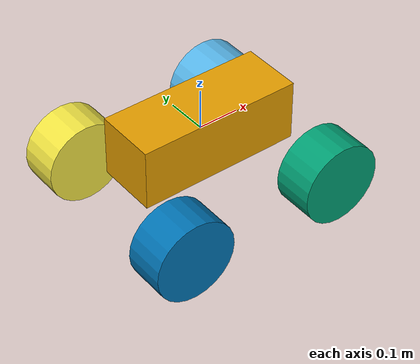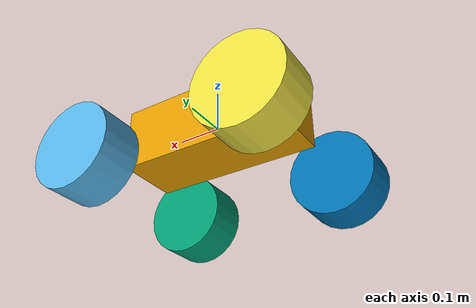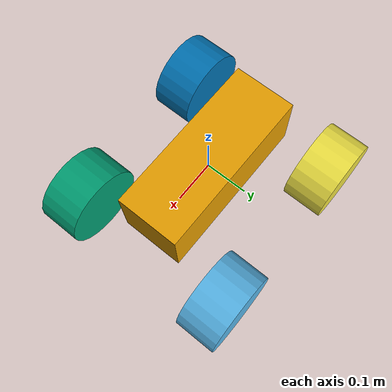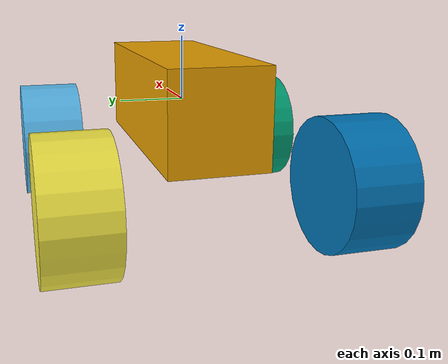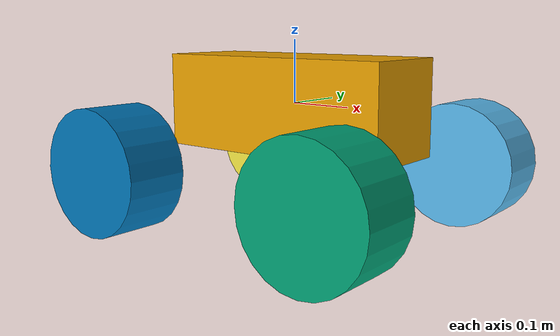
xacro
<?xml version="1.0"?>
<robot name="pathfinder_simple" xmlns:xacro="http://ros.org/wiki/xacro">
    <gazebo>
        <plugin name="gazebo_ros_control" filename="libgazebo_ros_control.so">
            <robotNamespace>/pathfinder</robotNamespace>
        </plugin>
        <plugin name="p3d_base_controller" filename="libgazebo_ros_p3d.so">
            <alwaysOn>true</alwaysOn>
            <updateRate>50.0</updateRate>
            <bodyName>base_link</bodyName>
            <topicName>odom</topicName>
            <gaussianNoise>0.01</gaussianNoise>
            <frameName>world</frameName>
            <xyzOffsets>0 0 0</xyzOffsets>
            <rpyOffsets>0 0 0</rpyOffsets>
        </plugin>
    </gazebo>
    <link name="base_link">
        <visual>
            <geometry>
                <box size= "0.40 0.15 0.15"/>
            </geometry>
            <origin xyz="0 0 0" rpy="0 0 0"/>
        </visual>
        <inertial>
            <mass value="10"/>
            <inertia ixx="0.2" ixy="0.0" ixz="0.0" iyy="0.4" iyz="0.0" izz="0.2"/>
            <origin xyz="0 0 0" rpy="0 0 0"/>
        </inertial>
        <collision>
            <geometry>
                <box size="0.15 0.40 0.15"/>
            </geometry>
            <origin xyz="0 0 0" rpy="0 0 0"/>
        </collision>
    </link>
    <link name="front_left_wheel">
        <visual>
            <geometry>
                <cylinder length="0.1" radius="0.1"/>
            </geometry>
            <origin xyz="0 0 0" rpy="1.571 0 0"/>
        </visual>
        <inertial>
            <mass value="2"/>
            <inertia ixx="0.6" ixy="0.0" ixz="0.0" iyy="0.2" iyz="0.0" izz="0.2"/>
            <origin xyz="0 0 0" rpy="1.571 0 0"/>
        </inertial>
        <collision>
            <geometry>
                <cylinder length="0.1" radius="0.1"/>
            </geometry>
            <origin xyz="0 0 0" rpy="1.571 0 0"/>
        </collision>
    </link>
    <joint name="base_to_front_left" type="continuous">
        <parent link="base_link"/>
        <child link="front_left_wheel"/>
        <origin xyz="0.2 0.2 -0.1"/>
        <axis xyz="0 1 0"/>
    </joint>
    <link name="front_right_wheel">
        <visual>
            <geometry>
                <cylinder length="0.1" radius="0.1"/>
            </geometry>
            <origin xyz="0 0 0" rpy="1.571 0 0"/>
        </visual>
        <inertial>
            <mass value="2"/>
            <inertia ixx="0.6" ixy="0.0" ixz="0.0" iyy="0.2" iyz="0.0" izz="0.2"/>
            <origin xyz="0 0 0" rpy="1.571 0 0"/>
        </inertial>
        <collision>
            <geometry>
                <cylinder length="0.1" radius="0.1"/>
            </geometry>
            <origin xyz="0 0 0" rpy="1.571 0 0"/>
        </collision>
    </link>
    <joint name="base_to_front_right" type="continuous">
        <parent link="base_link"/>
        <child link="front_right_wheel"/>
        <origin xyz="0.2 -0.2 -0.1"/>
        <axis xyz="0 1 0"/>
    </joint>
    <link name="back_left_wheel">
        <visual>
            <geometry>
                <cylinder length="0.1" radius="0.1"/>
            </geometry>
            <origin xyz="0 0 0" rpy="1.571 0 0"/>
        </visual>
        <inertial>
            <mass value="2"/>
            <inertia ixx="0.6" ixy="0.0" ixz="0.0" iyy="0.2" iyz="0.0" izz="0.2"/>
            <origin xyz="0 0 0" rpy="1.571 0 0"/>
        </inertial>
        <collision>
            <geometry>
                <cylinder length="0.1" radius="0.1"/>
            </geometry>
            <origin xyz="0 0 0" rpy="1.571 0 0"/>
        </collision>
    </link>
    <joint name="base_to_back_left" type="continuous">
        <parent link="base_link"/>
        <child link="back_left_wheel"/>
        <origin xyz="-0.2 0.2 -0.1"/>
        <axis xyz="0 1 0"/>
    </joint>
    <link name="back_right_wheel">
        <visual>
            <geometry>
                <cylinder length="0.1" radius="0.1"/>
            </geometry>
            <origin xyz="0 0 0" rpy="1.571 0 0"/>
        </visual>
        <inertial>
            <mass value="2"/>
            <inertia ixx="0.6" ixy="0.0" ixz="0.0" iyy="0.2" iyz="0.0" izz="0.2"/>
            <origin xyz="0 0 0" rpy="1.571 0 0"/>
        </inertial>
        <collision>
            <geometry>
                <cylinder length="0.1" radius="0.1"/>
            </geometry>
            <origin xyz="0 0 0" rpy="1.571 0 0"/>
        </collision>
    </link>
    <joint name="base_to_back_right" type="continuous">
        <parent link="base_link"/>
        <child link="back_right_wheel"/>
        <origin xyz="-0.2 -0.2 -0.1"/>
        <axis xyz="0 1 0"/>
    </joint>
    <transmission name="front_left_trans">
        <type>transmission_interface/SimpleTransmission</type>
        <joint name="base_to_front_left">
            <hardwareInterface>hardware_interface/VelocityJointInterface</hardwareInterface>
        </joint>
        <actuator name="front_left_motor">
            <hardwareInterface>hardware_interface/VelocityJointInterface</hardwareInterface>
            <mechanicalReduction>1</mechanicalReduction>
        </actuator>
    </transmission>
    <transmission name="back_left_trans">
        <type>transmission_interface/SimpleTransmission</type>
        <joint name="base_to_back_left">
            <hardwareInterface>hardware_interface/VelocityJointInterface</hardwareInterface>
        </joint>
        <actuator name="back_left_motor">
            <hardwareInterface>hardware_interface/VelocityJointInterface</hardwareInterface>
            <mechanicalReduction>1</mechanicalReduction>
        </actuator>
    </transmission>
    <transmission name="front_right_trans">
        <type>transmission_interface/SimpleTransmission</type>
        <joint name="base_to_front_right">
            <hardwareInterface>hardware_interface/VelocityJointInterface</hardwareInterface>
        </joint>
        <actuator name="front_right_motor">
            <hardwareInterface>hardware_interface/VelocityJointInterface</hardwareInterface>
            <mechanicalReduction>1</mechanicalReduction>
        </actuator>
    </transmission>
    <transmission name="back_right_trans">
        <type>transmission_interface/SimpleTransmission</type>
        <joint name="base_to_back_right">
            <hardwareInterface>hardware_interface/VelocityJointInterface</hardwareInterface>
        </joint>
        <actuator name="back_right_motor">
            <hardwareInterface>hardware_interface/VelocityJointInterface</hardwareInterface>
            <mechanicalReduction>1</mechanicalReduction>
        </actuator>
    </transmission>
</robot>
